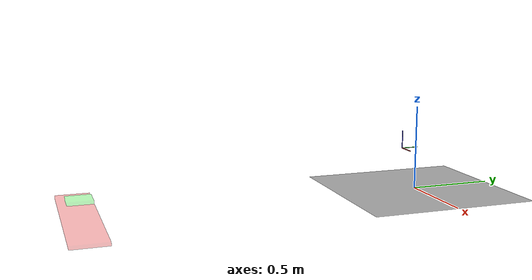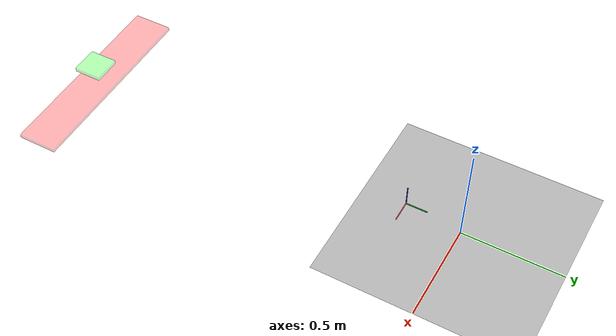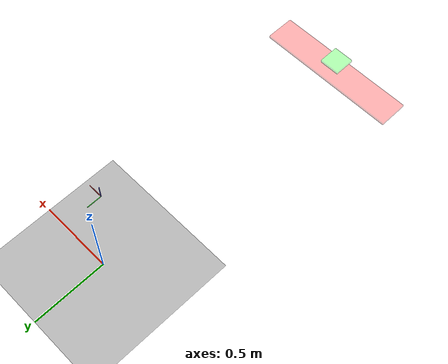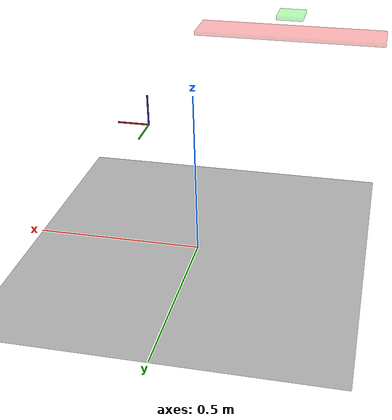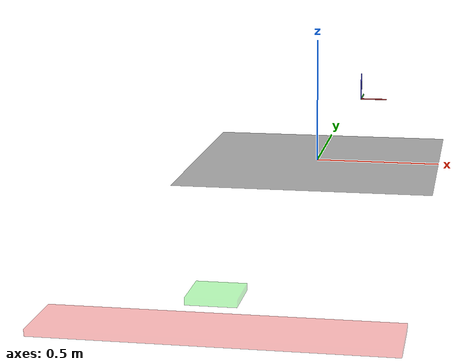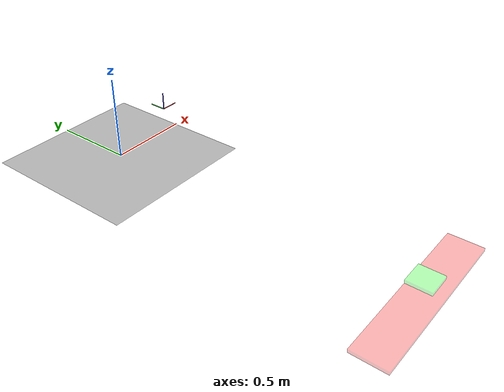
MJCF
<mujoco model="table_arena">
    <asset>
        <texture builtin="flat" height="256" rgb1="1 1 1." rgb2=".2 .3 .4" type="skybox" width="256"/>
        <texture builtin="checker" height="512" name="texplane" rgb1=".2 .3 .4" rgb2=".1 0.15 0.2" type="2d" width="512"/>
        <material name="floorplane" reflectance="0.5" texrepeat="1 1" texture="texplane" texuniform="true"/>
    </asset>

    <worldbody>
        <geom condim="3" rgba="0.7 0.7 0.7 1" name="FLOOR" pos="0 0 0" size="0.5 0.5 .125" type="plane" />
        <geom condim="3" rgba="1.0 0. 0. 0.3" name="HUMAN_HELP" pos="0 -2. 0.0" size="0.5 0.1 0.01" type="box" />
        <geom condim="3" rgba="0. 1. 0. 0.3" name="HUMAN_CONTROL" pos="0. -2 0.1" size="0.07 0.07 0.01" type="box" />

        <body name="VR_R" pos="0.2 -0.2 0.3">
            <site rgba="0.7 0.2 0.2 1" name="VR_R_x" pos="0.05 0 0" size="0.05 0.002 0.002" type="box" />
            <site rgba="0.2 0.7 0.2 1" name="VR_R_y" pos="0 0.05 0" size="0.002 0.05 0.002" type="box" />
            <site rgba="0.2 0.2 0.7 1" name="VR_R_z" pos="0 0 0.05" size="0.002 0.002 0.05" type="box" />
        </body>

        <light diffuse=".8 .8 .8" dir=".5 -.3 -.8" directional="true" pos="0 0 2.0" specular="0.3 0.3 0.3" castshadow="true"/>

        <!-- front view -->
        <!--camera mode="fixed" name="frontview" pos="0 -.7 0.5" quat="0.8891 0.4575 0. 0." fovy="60"/-->
        <!-- robot front view -->
        <camera mode="fixed" name="frontview" pos="0 -1.2 0.9" quat="0.86 0.51 0. 0." fovy="60"/>
        <camera mode="fixed" name="sideview" pos="-2.5 0. 0.5" quat="0.5468 0.4482 -0.4482 -0.5468"/>
    </worldbody>
</mujoco>
